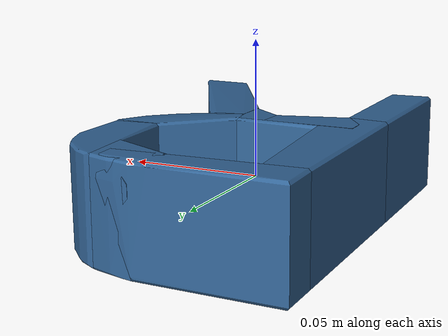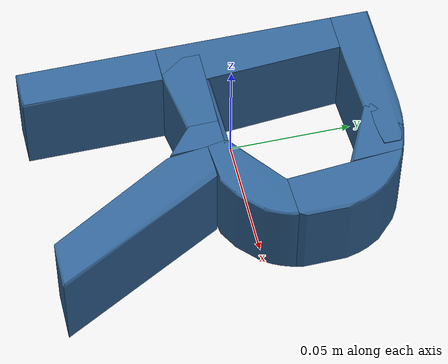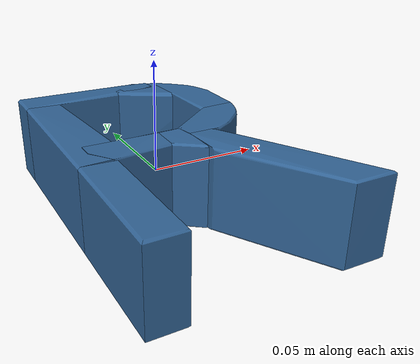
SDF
<?xml version='1.0' encoding='UTF-8'?>
<!-- This SDF was autogenerated by obj_to_drake_sdf.py -->
<sdf version="1.7">
  <model name="R_shape">
    <link name="R_shape">
      <inertial>
        <pose>0 0 0 0 0 0</pose>
        <mass>0.05</mass>
        <inertia>
          <ixx>0.00010148834</ixx>
          <iyy>5.7969079e-05</iyy>
          <izz>0.00014633043</izz>
          <ixy>3.4539373e-06</ixy>
          <ixz>1.7217571e-10</ixz>
          <iyz>-4.5023761e-10</iyz>
        </inertia>
      </inertial>
      <visual name="convex_0">
        <pose>0 0 0 0 0 0</pose>
        <geometry>
          <mesh>
            <uri>R_shape_convex_0.obj</uri>
          </mesh>
        </geometry>
        <material>
          <diffuse>0.19607843137254902 0.39215686274509803 0.5882352941176471 1</diffuse>
        </material>
      </visual>
      <collision name="convex_0_volume">
        <pose>0 0 0 0 0 0</pose>
        <geometry>
          <mesh>
            <uri>R_shape_convex_0.obj</uri>
          </mesh>
        </geometry>
        <drake:proximity_properties xmlns:drake="uri:drake">
          <drake:compliant_hydroelastic/>
          <drake:hydroelastic_modulus> 3.0e7 </drake:hydroelastic_modulus>
          <drake:mesh_resolution_hint> 0.02 </drake:mesh_resolution_hint>
          <drake:hunt_crossley_dissipation>10</drake:hunt_crossley_dissipation>
          <drake:mu_dynamic>0.3</drake:mu_dynamic>
        </drake:proximity_properties>
      </collision>
      <visual name="convex_1">
        <pose>0 0 0 0 0 0</pose>
        <geometry>
          <mesh>
            <uri>R_shape_convex_1.obj</uri>
          </mesh>
        </geometry>
        <material>
          <diffuse>0.19607843137254902 0.39215686274509803 0.5882352941176471 1</diffuse>
        </material>
      </visual>
      <collision name="convex_1_volume">
        <pose>0 0 0 0 0 0</pose>
        <geometry>
          <mesh>
            <uri>R_shape_convex_1.obj</uri>
          </mesh>
        </geometry>
        <drake:proximity_properties xmlns:drake="uri:drake">
          <drake:compliant_hydroelastic/>
          <drake:hydroelastic_modulus> 3.0e7 </drake:hydroelastic_modulus>
          <drake:mesh_resolution_hint> 0.02 </drake:mesh_resolution_hint>
          <drake:hunt_crossley_dissipation>10</drake:hunt_crossley_dissipation>
          <drake:mu_dynamic>0.3</drake:mu_dynamic>
        </drake:proximity_properties>
      </collision>
      <visual name="convex_2">
        <pose>0 0 0 0 0 0</pose>
        <geometry>
          <mesh>
            <uri>R_shape_convex_2.obj</uri>
          </mesh>
        </geometry>
        <material>
          <diffuse>0.19607843137254902 0.39215686274509803 0.5882352941176471 1</diffuse>
        </material>
      </visual>
      <collision name="convex_2_volume">
        <pose>0 0 0 0 0 0</pose>
        <geometry>
          <mesh>
            <uri>R_shape_convex_2.obj</uri>
          </mesh>
        </geometry>
        <drake:proximity_properties xmlns:drake="uri:drake">
          <drake:compliant_hydroelastic/>
          <drake:hydroelastic_modulus> 3.0e7 </drake:hydroelastic_modulus>
          <drake:mesh_resolution_hint> 0.02 </drake:mesh_resolution_hint>
          <drake:hunt_crossley_dissipation>10</drake:hunt_crossley_dissipation>
          <drake:mu_dynamic>0.3</drake:mu_dynamic>
        </drake:proximity_properties>
      </collision>
      <visual name="convex_3">
        <pose>0 0 0 0 0 0</pose>
        <geometry>
          <mesh>
            <uri>R_shape_convex_3.obj</uri>
          </mesh>
        </geometry>
        <material>
          <diffuse>0.19607843137254902 0.39215686274509803 0.5882352941176471 1</diffuse>
        </material>
      </visual>
      <collision name="convex_3_volume">
        <pose>0 0 0 0 0 0</pose>
        <geometry>
          <mesh>
            <uri>R_shape_convex_3.obj</uri>
          </mesh>
        </geometry>
        <drake:proximity_properties xmlns:drake="uri:drake">
          <drake:compliant_hydroelastic/>
          <drake:hydroelastic_modulus> 3.0e7 </drake:hydroelastic_modulus>
          <drake:mesh_resolution_hint> 0.02 </drake:mesh_resolution_hint>
          <drake:hunt_crossley_dissipation>10</drake:hunt_crossley_dissipation>
          <drake:mu_dynamic>0.3</drake:mu_dynamic>
        </drake:proximity_properties>
      </collision>
      <visual name="convex_4">
        <pose>0 0 0 0 0 0</pose>
        <geometry>
          <mesh>
            <uri>R_shape_convex_4.obj</uri>
          </mesh>
        </geometry>
        <material>
          <diffuse>0.19607843137254902 0.39215686274509803 0.5882352941176471 1</diffuse>
        </material>
      </visual>
      <collision name="convex_4_volume">
        <pose>0 0 0 0 0 0</pose>
        <geometry>
          <mesh>
            <uri>R_shape_convex_4.obj</uri>
          </mesh>
        </geometry>
        <drake:proximity_properties xmlns:drake="uri:drake">
          <drake:compliant_hydroelastic/>
          <drake:hydroelastic_modulus> 3.0e7 </drake:hydroelastic_modulus>
          <drake:mesh_resolution_hint> 0.02 </drake:mesh_resolution_hint>
          <drake:hunt_crossley_dissipation>10</drake:hunt_crossley_dissipation>
          <drake:mu_dynamic>0.3</drake:mu_dynamic>
        </drake:proximity_properties>
      </collision>
      <visual name="convex_5">
        <pose>0 0 0 0 0 0</pose>
        <geometry>
          <mesh>
            <uri>R_shape_convex_5.obj</uri>
          </mesh>
        </geometry>
        <material>
          <diffuse>0.19607843137254902 0.39215686274509803 0.5882352941176471 1</diffuse>
        </material>
      </visual>
      <collision name="convex_5_volume">
        <pose>0 0 0 0 0 0</pose>
        <geometry>
          <mesh>
            <uri>R_shape_convex_5.obj</uri>
          </mesh>
        </geometry>
        <drake:proximity_properties xmlns:drake="uri:drake">
          <drake:compliant_hydroelastic/>
          <drake:hydroelastic_modulus> 3.0e7 </drake:hydroelastic_modulus>
          <drake:mesh_resolution_hint> 0.02 </drake:mesh_resolution_hint>
          <drake:hunt_crossley_dissipation>10</drake:hunt_crossley_dissipation>
          <drake:mu_dynamic>0.3</drake:mu_dynamic>
        </drake:proximity_properties>
      </collision>
      <visual name="convex_6">
        <pose>0 0 0 0 0 0</pose>
        <geometry>
          <mesh>
            <uri>R_shape_convex_6.obj</uri>
          </mesh>
        </geometry>
        <material>
          <diffuse>0.19607843137254902 0.39215686274509803 0.5882352941176471 1</diffuse>
        </material>
      </visual>
      <collision name="convex_6_volume">
        <pose>0 0 0 0 0 0</pose>
        <geometry>
          <mesh>
            <uri>R_shape_convex_6.obj</uri>
          </mesh>
        </geometry>
        <drake:proximity_properties xmlns:drake="uri:drake">
          <drake:compliant_hydroelastic/>
          <drake:hydroelastic_modulus> 3.0e7 </drake:hydroelastic_modulus>
          <drake:mesh_resolution_hint> 0.02 </drake:mesh_resolution_hint>
          <drake:hunt_crossley_dissipation>10</drake:hunt_crossley_dissipation>
          <drake:mu_dynamic>0.3</drake:mu_dynamic>
        </drake:proximity_properties>
      </collision>
      <visual name="convex_7">
        <pose>0 0 0 0 0 0</pose>
        <geometry>
          <mesh>
            <uri>R_shape_convex_7.obj</uri>
          </mesh>
        </geometry>
        <material>
          <diffuse>0.19607843137254902 0.39215686274509803 0.5882352941176471 1</diffuse>
        </material>
      </visual>
      <collision name="convex_7_volume">
        <pose>0 0 0 0 0 0</pose>
        <geometry>
          <mesh>
            <uri>R_shape_convex_7.obj</uri>
          </mesh>
        </geometry>
        <drake:proximity_properties xmlns:drake="uri:drake">
          <drake:compliant_hydroelastic/>
          <drake:hydroelastic_modulus> 3.0e7 </drake:hydroelastic_modulus>
          <drake:mesh_resolution_hint> 0.02 </drake:mesh_resolution_hint>
          <drake:hunt_crossley_dissipation>10</drake:hunt_crossley_dissipation>
          <drake:mu_dynamic>0.3</drake:mu_dynamic>
        </drake:proximity_properties>
      </collision>
      <visual name="convex_8">
        <pose>0 0 0 0 0 0</pose>
        <geometry>
          <mesh>
            <uri>R_shape_convex_8.obj</uri>
          </mesh>
        </geometry>
        <material>
          <diffuse>0.19607843137254902 0.39215686274509803 0.5882352941176471 1</diffuse>
        </material>
      </visual>
      <collision name="convex_8_volume">
        <pose>0 0 0 0 0 0</pose>
        <geometry>
          <mesh>
            <uri>R_shape_convex_8.obj</uri>
          </mesh>
        </geometry>
        <drake:proximity_properties xmlns:drake="uri:drake">
          <drake:compliant_hydroelastic/>
          <drake:hydroelastic_modulus> 3.0e7 </drake:hydroelastic_modulus>
          <drake:mesh_resolution_hint> 0.02 </drake:mesh_resolution_hint>
          <drake:hunt_crossley_dissipation>10</drake:hunt_crossley_dissipation>
          <drake:mu_dynamic>0.3</drake:mu_dynamic>
        </drake:proximity_properties>
      </collision>
      <visual name="convex_9">
        <pose>0 0 0 0 0 0</pose>
        <geometry>
          <mesh>
            <uri>R_shape_convex_9.obj</uri>
          </mesh>
        </geometry>
        <material>
          <diffuse>0.19607843137254902 0.39215686274509803 0.5882352941176471 1</diffuse>
        </material>
      </visual>
      <collision name="convex_9_volume">
        <pose>0 0 0 0 0 0</pose>
        <geometry>
          <mesh>
            <uri>R_shape_convex_9.obj</uri>
          </mesh>
        </geometry>
        <drake:proximity_properties xmlns:drake="uri:drake">
          <drake:compliant_hydroelastic/>
          <drake:hydroelastic_modulus> 3.0e7 </drake:hydroelastic_modulus>
          <drake:mesh_resolution_hint> 0.02 </drake:mesh_resolution_hint>
          <drake:hunt_crossley_dissipation>10</drake:hunt_crossley_dissipation>
          <drake:mu_dynamic>0.3</drake:mu_dynamic>
        </drake:proximity_properties>
      </collision>
    </link>
  </model>
</sdf>
